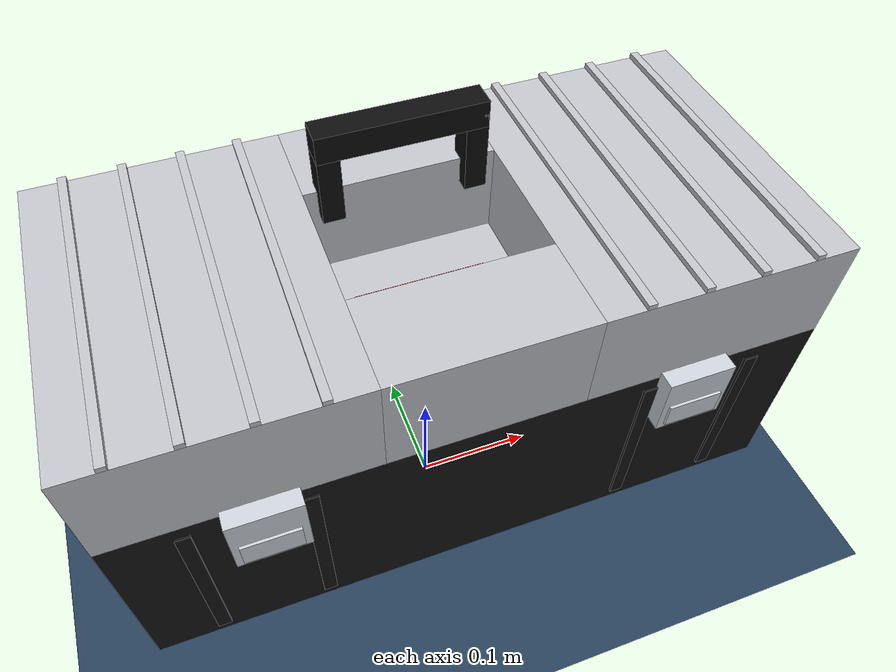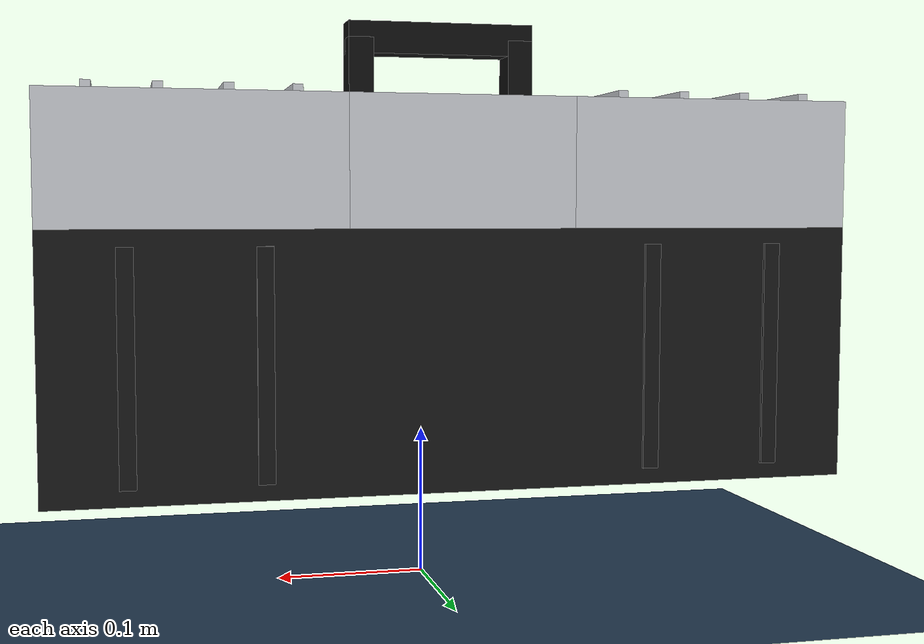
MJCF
<mujoco model="Portable Toolbox Silver">
  <compiler angle="degree" coordinate="local" inertiafromgeom="true"/>
  <option timestep="0.005" gravity="0 0 -9.81" density="1000" viscosity="0.1" integrator="RK4"/>

  <!-- High Quality Visual Settings (4K, 60fps target) -->
  <visual>
    <!-- 1. Resolution: 4K (3840x2160) -->
    <!-- 2. Shadow Quality: 8192 shadowsize, 8 samples for MSAA -->
    <quality shadowsize="8192" offsamples="8"/>
    <global fovy="45" offwidth="3840" offheight="2160" azimuth="150" elevation="-20"/>
    <map shadowclip="0.5" shadowscale="0.5" zfar="100"/>
    <!-- 3. Atmospheric Fog for depth -->
    <rgba haze="0.15 0.25 0.35 1" fog="0 0 0 1"/>
  </visual>

  <statistic extent="2" center="0 0 0.5"/>

  <default>
    <geom condim="3" solref="0.004 1"/>
    <joint damping="0.5" armature="0.01"/>
  </default>

  <asset>
    <!-- High-Res Textures & PBR-like Materials -->

    <!-- Skybox for metallic reflections (Pseudo-HDR) -->
    <texture type="skybox" builtin="gradient" rgb1="0.6 0.7 0.8" rgb2="0.1 0.15 0.2" width="2048" height="2048"/>

    <!-- Floor with high res checker -->
    <texture type="2d" name="groundplane" builtin="checker" rgb1="0.2 0.3 0.4" rgb2="0.1 0.2 0.3" width="2048" height="2048" mark="edge" markrgb="0.8 0.8 0.8"/>
    <material name="groundplane" texture="groundplane" texrepeat="5 5" reflectance="0.2" shininess="0.1"/>

    <!-- ================== NEW SILVER METAL MATERIALS ================== -->
    <!-- 1. Silver Metal (Replacing Grey Plastic Lid) -->
    <!-- RGB: ~192/255 = 0.75 -->
    <!-- Metalness: High specular (0.9), High reflectance (0.7) -->
    <!-- Roughness: 0.3 -> Shininess ~0.7 -->
    <material name="mat_silver_metal" rgba="0.75 0.76 0.78 1" specular="0.9" shininess="0.7" reflectance="0.7"/>

    <!-- 2. Polished Metal Latch (Replacing Grey Latch) -->
    <!-- Slightly brighter, smoother -->
    <material name="mat_metal_latch" rgba="0.8 0.82 0.85 1" specular="1.0" shininess="0.9" reflectance="0.8"/>

    <!-- Black Body: Rough plastic, low specular, subtle bumpiness (simulated via roughness) -->
    <material name="mat_black_body" rgba="0.08 0.08 0.08 1" specular="0.3" shininess="0.1" reflectance="0.05"/>

    <!-- Handle: Glossy black plastic or painted metal -->
    <material name="mat_handle_black" rgba="0.05 0.05 0.05 1" specular="0.7" shininess="0.8" reflectance="0.3"/>

    <!-- Red Text: Emissive/Bright paint -->
    <material name="mat_red_text" rgba="0.8 0.1 0.1 1" specular="0.5" shininess="0.5" emission="0.2"/>

    <!-- Cloth Material (Cleaning Rag) -->
    <material name="mat_rag" rgba="0.8 0.6 0.2 1" specular="0.05" shininess="0.1" reflectance="0.0"/>
  </asset>

  <worldbody>
    <!-- Studio Lighting Setup (Global Illumination Approximation) -->
    <!-- Key Light (Main source, casts shadows) -->
    <light pos="2 -2 3" dir="-0.5 0.5 -1" diffuse="0.9 0.9 0.95" specular="0.5 0.5 0.5" castshadow="true" active="true"/>

    <!-- Fill Light (Softens shadows, warmer tone) -->
    <light pos="-2 2 3" dir="0.5 -0.5 -1" diffuse="0.4 0.4 0.45" specular="0.2 0.2 0.2" castshadow="false" active="true"/>

    <!-- Rim Light (Backlight for edge definition) -->
    <light pos="0 -3 2" dir="0 1 -0.5" diffuse="0.3 0.3 0.35" specular="0.8 0.8 0.8" castshadow="false" active="true"/>

    <geom name="floor" size="0 0 0.05" type="plane" material="groundplane"/>

    <!-- Portable Toolbox Grey -->
    <body name="toolbox" pos="0 0 0.16">
      <freejoint/>

      <!-- ================= MAIN BODY (Bottom Black Part) ================= -->
      <!-- Size: Width 50cm (x=0.25), Depth 24cm (y=0.12), Height 16cm (z=0.08) -->
      <geom name="body_base" type="box" size="0.25 0.12 0.08" pos="0 0 0" material="mat_black_body"/>

      <!-- Vertical Ribs on Body (Subtle vertical lines) -->
      <geom name="body_rib_L1" type="box" size="0.005 0.122 0.07" pos="-0.20 0 0" material="mat_black_body"/>
      <geom name="body_rib_L2" type="box" size="0.005 0.122 0.07" pos="-0.12 0 0" material="mat_black_body"/>
      <geom name="body_rib_R1" type="box" size="0.005 0.122 0.07" pos="0.12 0 0" material="mat_black_body"/>
      <geom name="body_rib_R2" type="box" size="0.005 0.122 0.07" pos="0.20 0 0" material="mat_black_body"/>

      <!-- ================= LID (Silver Metal Part) ================= -->
      <!-- Hinged at the back -->
      <body name="lid" pos="0 0.12 0.08">
        <!-- Locked lid to ensure it stays square and closed -->
        <joint name="lid_hinge" axis="1 0 0" range="0 0" pos="0 0 0" stiffness="1000" springref="0"/>

        <!-- Lid Construction: Built from blocks to create the handle recess -->
        <!-- Lid Height approx 8cm -->

        <!-- 1. Left Block -->
        <geom name="lid_left" type="box" size="0.09 0.12 0.04" pos="-0.16 -0.12 0.04" material="mat_silver_metal"/>

        <!-- 2. Right Block -->
        <geom name="lid_right" type="box" size="0.09 0.12 0.04" pos="0.16 -0.12 0.04" material="mat_silver_metal"/>

        <!-- 3. Front Strip (Thin strip connecting L and R in front of handle) -->
        <geom name="lid_front" type="box" size="0.07 0.035 0.04" pos="0 -0.205 0.04" material="mat_silver_metal"/>

        <!-- 4. Back Strip (Behind handle) -->
        <geom name="lid_back" type="box" size="0.07 0.035 0.04" pos="0 -0.035 0.04" material="mat_silver_metal"/>

        <!-- 5. Bottom Plate of the recess (Where text sits) -->
        <geom name="lid_recess_floor" type="box" size="0.07 0.05 0.005" pos="0 -0.12 0.005" material="mat_silver_metal"/>

        <!-- "TOOL BOX" Label in the recess -->
        <!-- Represented as a red plate since we can't do detailed text easily without textures -->
        <geom name="label_plate" type="box" size="0.05 0.01 0.001" pos="0 -0.12 0.011" material="mat_red_text"/>

        <!-- Ribbing Texture on Top (Thin strips on the left and right blocks) -->
        <!-- Left Side Ribs -->
        <geom name="rib_L1" type="box" size="0.003 0.12 0.002" pos="-0.22 -0.12 0.082" material="mat_silver_metal"/>
        <geom name="rib_L2" type="box" size="0.003 0.12 0.002" pos="-0.18 -0.12 0.082" material="mat_silver_metal"/>
        <geom name="rib_L3" type="box" size="0.003 0.12 0.002" pos="-0.14 -0.12 0.082" material="mat_silver_metal"/>
        <geom name="rib_L4" type="box" size="0.003 0.12 0.002" pos="-0.10 -0.12 0.082" material="mat_silver_metal"/>

        <!-- Right Side Ribs -->
        <geom name="rib_R1" type="box" size="0.003 0.12 0.002" pos="0.22 -0.12 0.082" material="mat_silver_metal"/>
        <geom name="rib_R2" type="box" size="0.003 0.12 0.002" pos="0.18 -0.12 0.082" material="mat_silver_metal"/>
        <geom name="rib_R3" type="box" size="0.003 0.12 0.002" pos="0.14 -0.12 0.082" material="mat_silver_metal"/>
        <geom name="rib_R4" type="box" size="0.003 0.12 0.002" pos="0.10 -0.12 0.082" material="mat_silver_metal"/>

        <!-- ================= HANDLE ================= -->
        <!-- Rectangular Black Handle, pivoting, Standing Up by default -->
        <body name="handle" pos="0 -0.07 0.06" euler="-90 0 0">
            <!-- Spring stiffness keeps it upright -->
            <joint name="handle_hinge" axis="1 0 0" range="-90 90" stiffness="1" springref="0"/>
            <!-- Top Bar -->
            <geom name="h_top" type="box" size="0.06 0.01 0.01" pos="0 -0.06 0" material="mat_handle_black"/>
            <!-- Side Legs -->
            <geom name="h_leg_L" type="box" size="0.008 0.03 0.01" pos="-0.052 -0.03 0" material="mat_handle_black"/>
            <geom name="h_leg_R" type="box" size="0.008 0.03 0.01" pos="0.052 -0.03 0" material="mat_handle_black"/>
        </body>

      </body>

      <!-- ================= LATCHES ================= -->
      <!-- Silver Metal Latches -->
      <!-- Left Latch -->
      <body name="latch_L" pos="-0.15 -0.12 0.06">
        <!-- Base attached to lid/body area (Visual) -->
        <geom name="latch_L_base" type="box" size="0.025 0.008 0.025" pos="0 -0.005 0" material="mat_metal_latch"/>
        <!-- The lever part -->
        <geom name="latch_L_lever" type="box" size="0.02 0.005 0.01" pos="0 -0.01 -0.01" material="mat_metal_latch"/>
      </body>

      <!-- Right Latch -->
      <body name="latch_R" pos="0.15 -0.12 0.06">
        <geom name="latch_R_base" type="box" size="0.025 0.008 0.025" pos="0 -0.005 0" material="mat_metal_latch"/>
        <geom name="latch_R_lever" type="box" size="0.02 0.005 0.01" pos="0 -0.01 -0.01" material="mat_metal_latch"/>
      </body>

    </body>

  </worldbody>
</mujoco>
